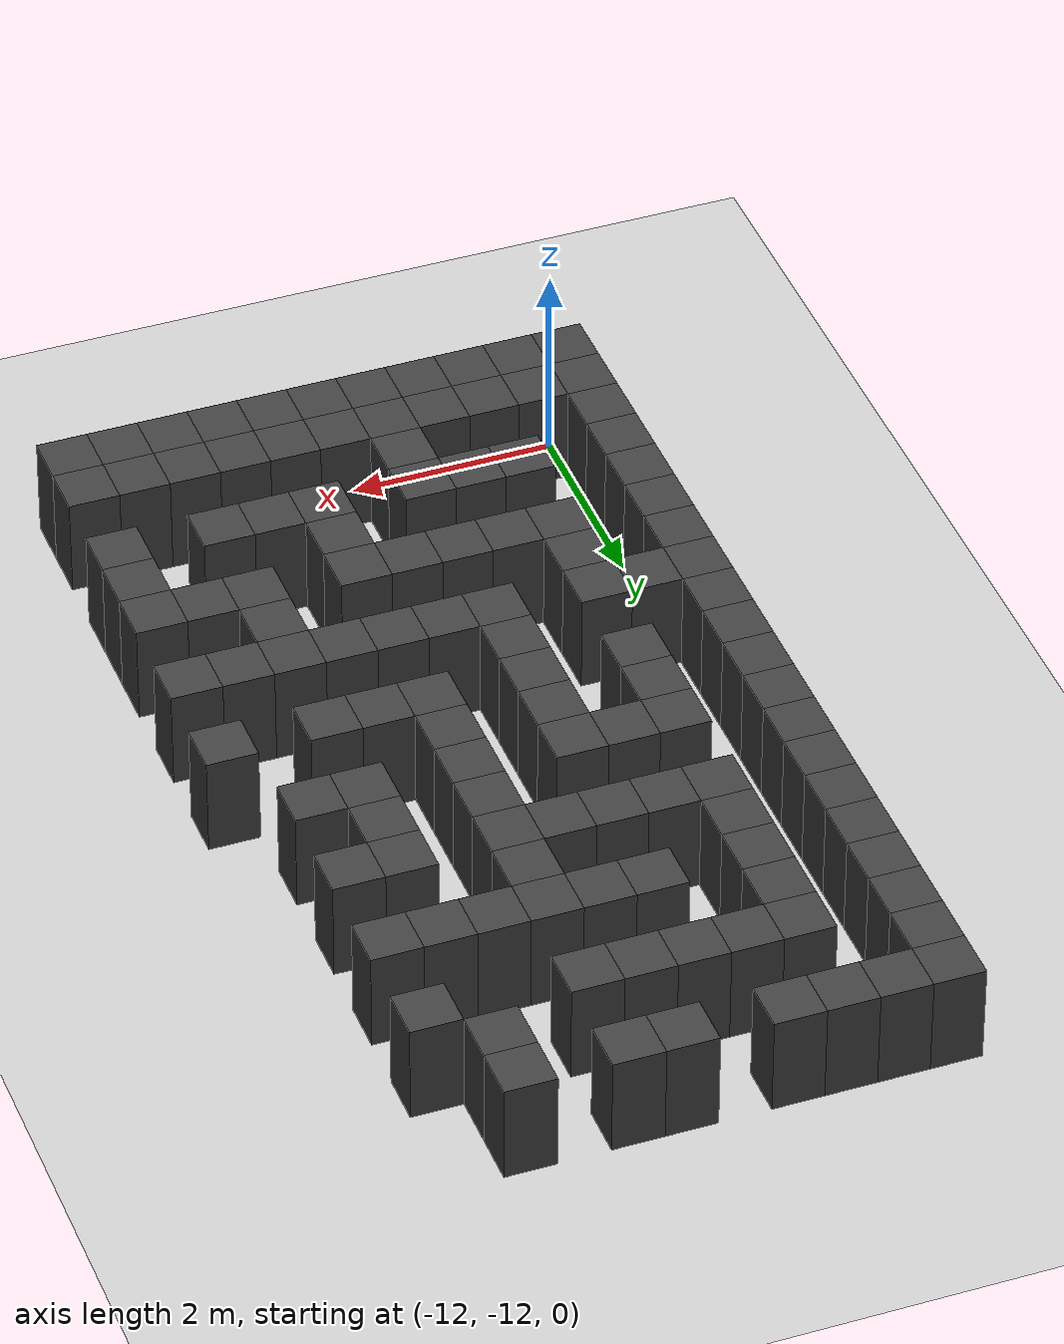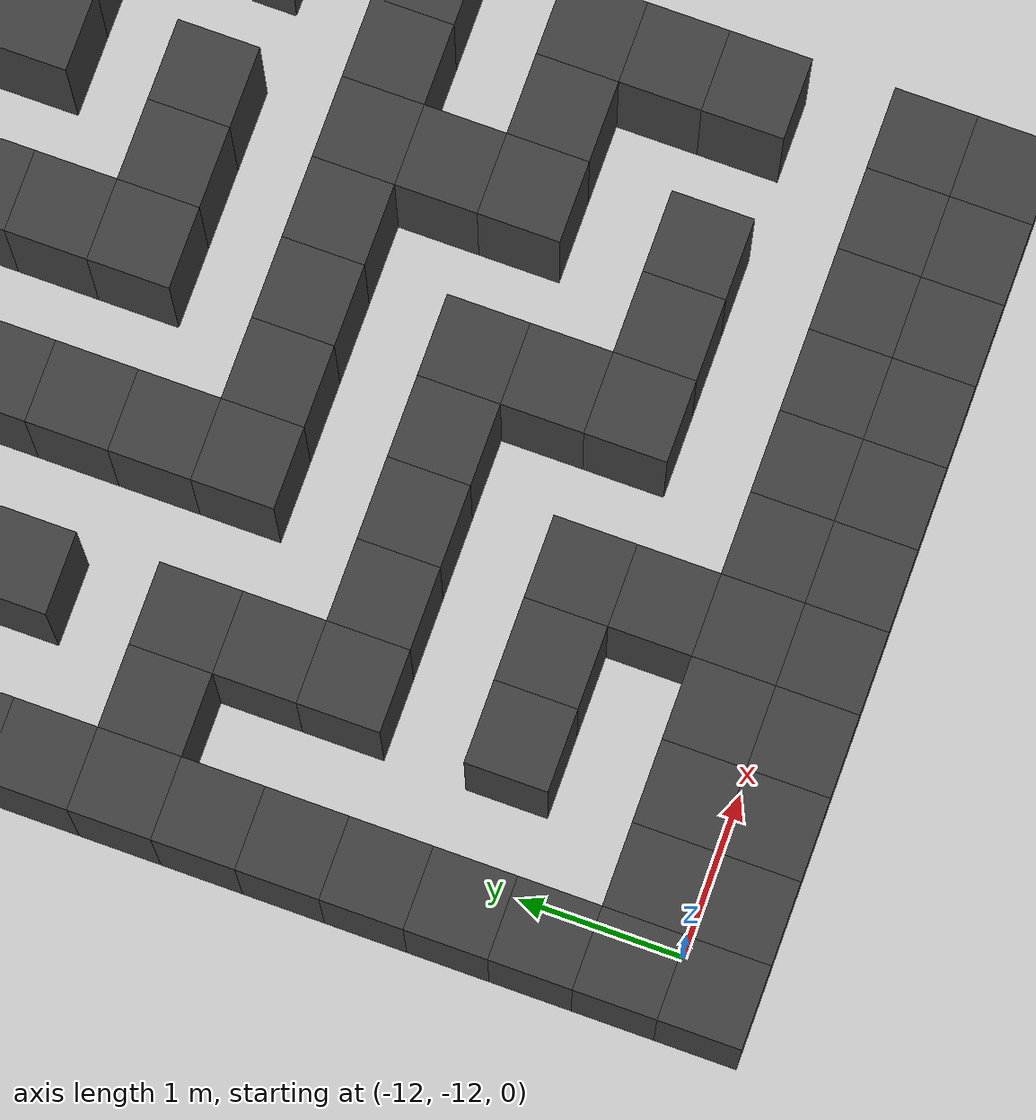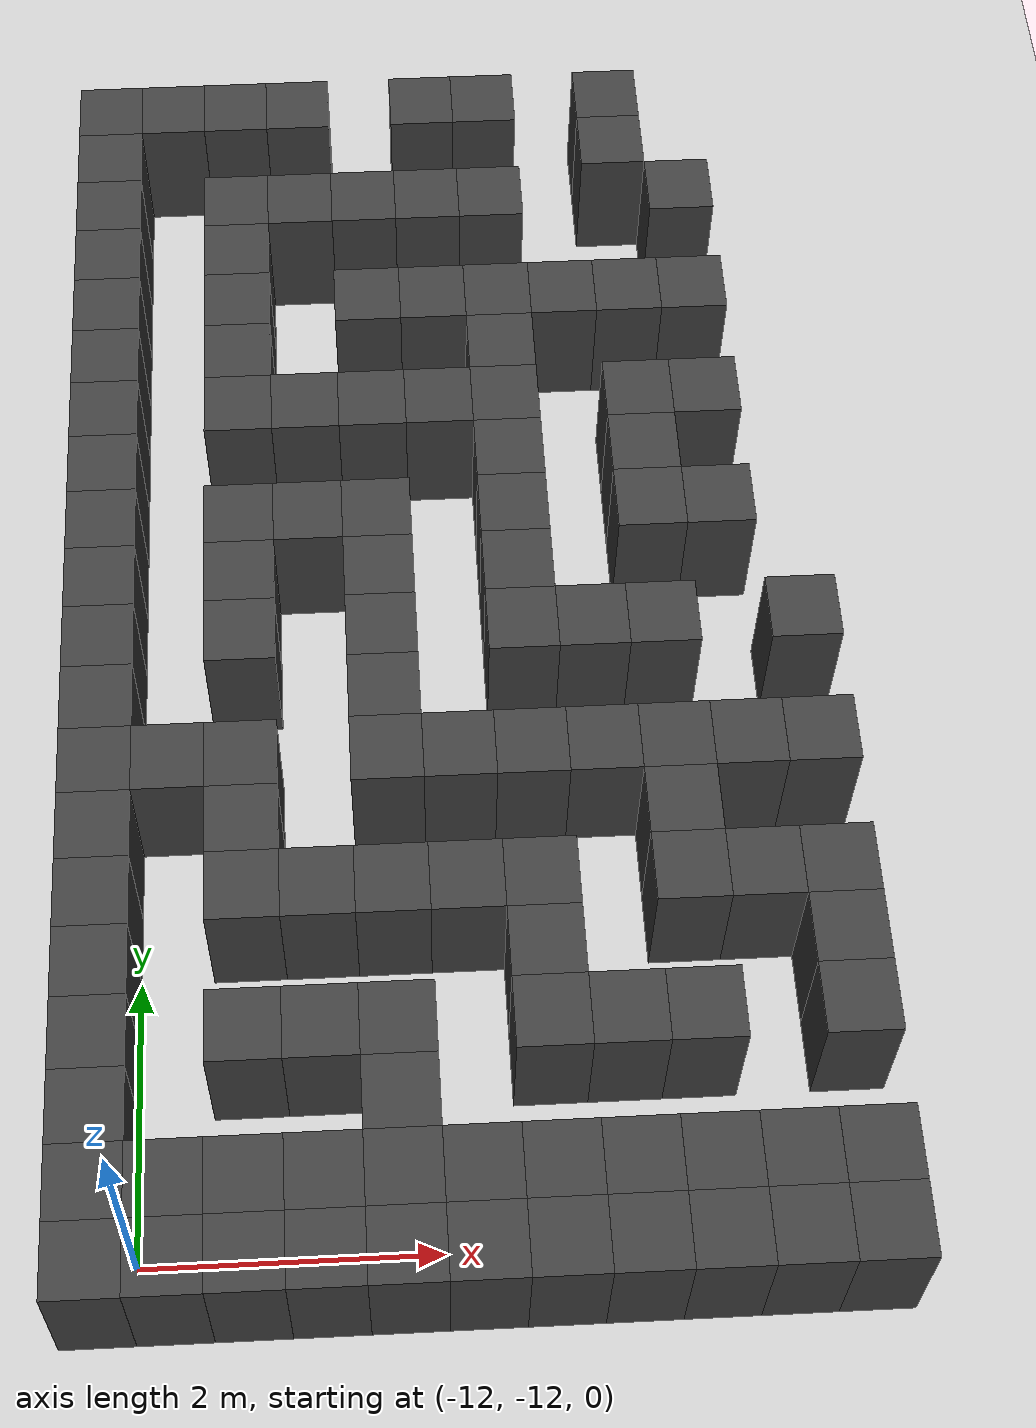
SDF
<sdf version="1.7">
 <world name="map_18347">
  <model name="ground_plane">
   <static>true</static>
   <link name="link">
    <collision name="collision">
     <geometry><plane><normal>0 0 1</normal><size>200 200</size></plane></geometry>
    </collision>
    <visual name="visual">
     <geometry><plane><normal>0 0 1</normal><size>200 200</size></plane></geometry>
     <material><ambient>0.8 0.8 0.8 1</ambient><diffuse>0.8 0.8 0.8 1</diffuse></material>
    </visual>
   </link>
  </model>
  <model name="maze_environment">
   <static>true</static>
   <link name="wall_755">
    <pose>-12.250 -2.750 0.500 0 0 0</pose>
    <collision name="col"><geometry><box><size>0.5 0.5 1.0</size></box></geometry></collision>
    <visual name="vis">
     <geometry><box><size>0.5 0.5 1.0</size></box></geometry>
     <material><ambient>0.15 0.15 0.15 1</ambient><diffuse>0.25 0.25 0.25 1</diffuse></material>
    </visual>
   </link>
   <link name="wall_756">
    <pose>-11.750 -2.750 0.500 0 0 0</pose>
    <collision name="col"><geometry><box><size>0.5 0.5 1.0</size></box></geometry></collision>
    <visual name="vis">
     <geometry><box><size>0.5 0.5 1.0</size></box></geometry>
     <material><ambient>0.15 0.15 0.15 1</ambient><diffuse>0.25 0.25 0.25 1</diffuse></material>
    </visual>
   </link>
   <link name="wall_757">
    <pose>-11.250 -2.750 0.500 0 0 0</pose>
    <collision name="col"><geometry><box><size>0.5 0.5 1.0</size></box></geometry></collision>
    <visual name="vis">
     <geometry><box><size>0.5 0.5 1.0</size></box></geometry>
     <material><ambient>0.15 0.15 0.15 1</ambient><diffuse>0.25 0.25 0.25 1</diffuse></material>
    </visual>
   </link>
   <link name="wall_758">
    <pose>-10.750 -2.750 0.500 0 0 0</pose>
    <collision name="col"><geometry><box><size>0.5 0.5 1.0</size></box></geometry></collision>
    <visual name="vis">
     <geometry><box><size>0.5 0.5 1.0</size></box></geometry>
     <material><ambient>0.15 0.15 0.15 1</ambient><diffuse>0.25 0.25 0.25 1</diffuse></material>
    </visual>
   </link>
   <link name="wall_759">
    <pose>-9.750 -2.750 0.500 0 0 0</pose>
    <collision name="col"><geometry><box><size>0.5 0.5 1.0</size></box></geometry></collision>
    <visual name="vis">
     <geometry><box><size>0.5 0.5 1.0</size></box></geometry>
     <material><ambient>0.15 0.15 0.15 1</ambient><diffuse>0.25 0.25 0.25 1</diffuse></material>
    </visual>
   </link>
   <link name="wall_760">
    <pose>-9.250 -2.750 0.500 0 0 0</pose>
    <collision name="col"><geometry><box><size>0.5 0.5 1.0</size></box></geometry></collision>
    <visual name="vis">
     <geometry><box><size>0.5 0.5 1.0</size></box></geometry>
     <material><ambient>0.15 0.15 0.15 1</ambient><diffuse>0.25 0.25 0.25 1</diffuse></material>
    </visual>
   </link>
   <link name="wall_761">
    <pose>-8.250 -2.750 0.500 0 0 0</pose>
    <collision name="col"><geometry><box><size>0.5 0.5 1.0</size></box></geometry></collision>
    <visual name="vis">
     <geometry><box><size>0.5 0.5 1.0</size></box></geometry>
     <material><ambient>0.15 0.15 0.15 1</ambient><diffuse>0.25 0.25 0.25 1</diffuse></material>
    </visual>
   </link>
   <link name="wall_790">
    <pose>-12.250 -3.250 0.500 0 0 0</pose>
    <collision name="col"><geometry><box><size>0.5 0.5 1.0</size></box></geometry></collision>
    <visual name="vis">
     <geometry><box><size>0.5 0.5 1.0</size></box></geometry>
     <material><ambient>0.15 0.15 0.15 1</ambient><diffuse>0.25 0.25 0.25 1</diffuse></material>
    </visual>
   </link>
   <link name="wall_791">
    <pose>-8.250 -3.250 0.500 0 0 0</pose>
    <collision name="col"><geometry><box><size>0.5 0.5 1.0</size></box></geometry></collision>
    <visual name="vis">
     <geometry><box><size>0.5 0.5 1.0</size></box></geometry>
     <material><ambient>0.15 0.15 0.15 1</ambient><diffuse>0.25 0.25 0.25 1</diffuse></material>
    </visual>
   </link>
   <link name="wall_803">
    <pose>-12.250 -3.750 0.500 0 0 0</pose>
    <collision name="col"><geometry><box><size>0.5 0.5 1.0</size></box></geometry></collision>
    <visual name="vis">
     <geometry><box><size>0.5 0.5 1.0</size></box></geometry>
     <material><ambient>0.15 0.15 0.15 1</ambient><diffuse>0.25 0.25 0.25 1</diffuse></material>
    </visual>
   </link>
   <link name="wall_804">
    <pose>-11.250 -3.750 0.500 0 0 0</pose>
    <collision name="col"><geometry><box><size>0.5 0.5 1.0</size></box></geometry></collision>
    <visual name="vis">
     <geometry><box><size>0.5 0.5 1.0</size></box></geometry>
     <material><ambient>0.15 0.15 0.15 1</ambient><diffuse>0.25 0.25 0.25 1</diffuse></material>
    </visual>
   </link>
   <link name="wall_805">
    <pose>-10.750 -3.750 0.500 0 0 0</pose>
    <collision name="col"><geometry><box><size>0.5 0.5 1.0</size></box></geometry></collision>
    <visual name="vis">
     <geometry><box><size>0.5 0.5 1.0</size></box></geometry>
     <material><ambient>0.15 0.15 0.15 1</ambient><diffuse>0.25 0.25 0.25 1</diffuse></material>
    </visual>
   </link>
   <link name="wall_806">
    <pose>-10.250 -3.750 0.500 0 0 0</pose>
    <collision name="col"><geometry><box><size>0.5 0.5 1.0</size></box></geometry></collision>
    <visual name="vis">
     <geometry><box><size>0.5 0.5 1.0</size></box></geometry>
     <material><ambient>0.15 0.15 0.15 1</ambient><diffuse>0.25 0.25 0.25 1</diffuse></material>
    </visual>
   </link>
   <link name="wall_807">
    <pose>-9.750 -3.750 0.500 0 0 0</pose>
    <collision name="col"><geometry><box><size>0.5 0.5 1.0</size></box></geometry></collision>
    <visual name="vis">
     <geometry><box><size>0.5 0.5 1.0</size></box></geometry>
     <material><ambient>0.15 0.15 0.15 1</ambient><diffuse>0.25 0.25 0.25 1</diffuse></material>
    </visual>
   </link>
   <link name="wall_808">
    <pose>-9.250 -3.750 0.500 0 0 0</pose>
    <collision name="col"><geometry><box><size>0.5 0.5 1.0</size></box></geometry></collision>
    <visual name="vis">
     <geometry><box><size>0.5 0.5 1.0</size></box></geometry>
     <material><ambient>0.15 0.15 0.15 1</ambient><diffuse>0.25 0.25 0.25 1</diffuse></material>
    </visual>
   </link>
   <link name="wall_809">
    <pose>-7.750 -3.750 0.500 0 0 0</pose>
    <collision name="col"><geometry><box><size>0.5 0.5 1.0</size></box></geometry></collision>
    <visual name="vis">
     <geometry><box><size>0.5 0.5 1.0</size></box></geometry>
     <material><ambient>0.15 0.15 0.15 1</ambient><diffuse>0.25 0.25 0.25 1</diffuse></material>
    </visual>
   </link>
   <link name="wall_841">
    <pose>-12.250 -4.250 0.500 0 0 0</pose>
    <collision name="col"><geometry><box><size>0.5 0.5 1.0</size></box></geometry></collision>
    <visual name="vis">
     <geometry><box><size>0.5 0.5 1.0</size></box></geometry>
     <material><ambient>0.15 0.15 0.15 1</ambient><diffuse>0.25 0.25 0.25 1</diffuse></material>
    </visual>
   </link>
   <link name="wall_842">
    <pose>-11.250 -4.250 0.500 0 0 0</pose>
    <collision name="col"><geometry><box><size>0.5 0.5 1.0</size></box></geometry></collision>
    <visual name="vis">
     <geometry><box><size>0.5 0.5 1.0</size></box></geometry>
     <material><ambient>0.15 0.15 0.15 1</ambient><diffuse>0.25 0.25 0.25 1</diffuse></material>
    </visual>
   </link>
   <link name="wall_853">
    <pose>-12.250 -4.750 0.500 0 0 0</pose>
    <collision name="col"><geometry><box><size>0.5 0.5 1.0</size></box></geometry></collision>
    <visual name="vis">
     <geometry><box><size>0.5 0.5 1.0</size></box></geometry>
     <material><ambient>0.15 0.15 0.15 1</ambient><diffuse>0.25 0.25 0.25 1</diffuse></material>
    </visual>
   </link>
   <link name="wall_854">
    <pose>-11.250 -4.750 0.500 0 0 0</pose>
    <collision name="col"><geometry><box><size>0.5 0.5 1.0</size></box></geometry></collision>
    <visual name="vis">
     <geometry><box><size>0.5 0.5 1.0</size></box></geometry>
     <material><ambient>0.15 0.15 0.15 1</ambient><diffuse>0.25 0.25 0.25 1</diffuse></material>
    </visual>
   </link>
   <link name="wall_855">
    <pose>-10.250 -4.750 0.500 0 0 0</pose>
    <collision name="col"><geometry><box><size>0.5 0.5 1.0</size></box></geometry></collision>
    <visual name="vis">
     <geometry><box><size>0.5 0.5 1.0</size></box></geometry>
     <material><ambient>0.15 0.15 0.15 1</ambient><diffuse>0.25 0.25 0.25 1</diffuse></material>
    </visual>
   </link>
   <link name="wall_856">
    <pose>-9.750 -4.750 0.500 0 0 0</pose>
    <collision name="col"><geometry><box><size>0.5 0.5 1.0</size></box></geometry></collision>
    <visual name="vis">
     <geometry><box><size>0.5 0.5 1.0</size></box></geometry>
     <material><ambient>0.15 0.15 0.15 1</ambient><diffuse>0.25 0.25 0.25 1</diffuse></material>
    </visual>
   </link>
   <link name="wall_857">
    <pose>-9.250 -4.750 0.500 0 0 0</pose>
    <collision name="col"><geometry><box><size>0.5 0.5 1.0</size></box></geometry></collision>
    <visual name="vis">
     <geometry><box><size>0.5 0.5 1.0</size></box></geometry>
     <material><ambient>0.15 0.15 0.15 1</ambient><diffuse>0.25 0.25 0.25 1</diffuse></material>
    </visual>
   </link>
   <link name="wall_858">
    <pose>-8.750 -4.750 0.500 0 0 0</pose>
    <collision name="col"><geometry><box><size>0.5 0.5 1.0</size></box></geometry></collision>
    <visual name="vis">
     <geometry><box><size>0.5 0.5 1.0</size></box></geometry>
     <material><ambient>0.15 0.15 0.15 1</ambient><diffuse>0.25 0.25 0.25 1</diffuse></material>
    </visual>
   </link>
   <link name="wall_859">
    <pose>-8.250 -4.750 0.500 0 0 0</pose>
    <collision name="col"><geometry><box><size>0.5 0.5 1.0</size></box></geometry></collision>
    <visual name="vis">
     <geometry><box><size>0.5 0.5 1.0</size></box></geometry>
     <material><ambient>0.15 0.15 0.15 1</ambient><diffuse>0.25 0.25 0.25 1</diffuse></material>
    </visual>
   </link>
   <link name="wall_860">
    <pose>-7.750 -4.750 0.500 0 0 0</pose>
    <collision name="col"><geometry><box><size>0.5 0.5 1.0</size></box></geometry></collision>
    <visual name="vis">
     <geometry><box><size>0.5 0.5 1.0</size></box></geometry>
     <material><ambient>0.15 0.15 0.15 1</ambient><diffuse>0.25 0.25 0.25 1</diffuse></material>
    </visual>
   </link>
   <link name="wall_891">
    <pose>-12.250 -5.250 0.500 0 0 0</pose>
    <collision name="col"><geometry><box><size>0.5 0.5 1.0</size></box></geometry></collision>
    <visual name="vis">
     <geometry><box><size>0.5 0.5 1.0</size></box></geometry>
     <material><ambient>0.15 0.15 0.15 1</ambient><diffuse>0.25 0.25 0.25 1</diffuse></material>
    </visual>
   </link>
   <link name="wall_892">
    <pose>-11.250 -5.250 0.500 0 0 0</pose>
    <collision name="col"><geometry><box><size>0.5 0.5 1.0</size></box></geometry></collision>
    <visual name="vis">
     <geometry><box><size>0.5 0.5 1.0</size></box></geometry>
     <material><ambient>0.15 0.15 0.15 1</ambient><diffuse>0.25 0.25 0.25 1</diffuse></material>
    </visual>
   </link>
   <link name="wall_893">
    <pose>-9.250 -5.250 0.500 0 0 0</pose>
    <collision name="col"><geometry><box><size>0.5 0.5 1.0</size></box></geometry></collision>
    <visual name="vis">
     <geometry><box><size>0.5 0.5 1.0</size></box></geometry>
     <material><ambient>0.15 0.15 0.15 1</ambient><diffuse>0.25 0.25 0.25 1</diffuse></material>
    </visual>
   </link>
   <link name="wall_904">
    <pose>-12.250 -5.750 0.500 0 0 0</pose>
    <collision name="col"><geometry><box><size>0.5 0.5 1.0</size></box></geometry></collision>
    <visual name="vis">
     <geometry><box><size>0.5 0.5 1.0</size></box></geometry>
     <material><ambient>0.15 0.15 0.15 1</ambient><diffuse>0.25 0.25 0.25 1</diffuse></material>
    </visual>
   </link>
   <link name="wall_905">
    <pose>-11.250 -5.750 0.500 0 0 0</pose>
    <collision name="col"><geometry><box><size>0.5 0.5 1.0</size></box></geometry></collision>
    <visual name="vis">
     <geometry><box><size>0.5 0.5 1.0</size></box></geometry>
     <material><ambient>0.15 0.15 0.15 1</ambient><diffuse>0.25 0.25 0.25 1</diffuse></material>
    </visual>
   </link>
   <link name="wall_906">
    <pose>-10.750 -5.750 0.500 0 0 0</pose>
    <collision name="col"><geometry><box><size>0.5 0.5 1.0</size></box></geometry></collision>
    <visual name="vis">
     <geometry><box><size>0.5 0.5 1.0</size></box></geometry>
     <material><ambient>0.15 0.15 0.15 1</ambient><diffuse>0.25 0.25 0.25 1</diffuse></material>
    </visual>
   </link>
   <link name="wall_907">
    <pose>-10.250 -5.750 0.500 0 0 0</pose>
    <collision name="col"><geometry><box><size>0.5 0.5 1.0</size></box></geometry></collision>
    <visual name="vis">
     <geometry><box><size>0.5 0.5 1.0</size></box></geometry>
     <material><ambient>0.15 0.15 0.15 1</ambient><diffuse>0.25 0.25 0.25 1</diffuse></material>
    </visual>
   </link>
   <link name="wall_908">
    <pose>-9.750 -5.750 0.500 0 0 0</pose>
    <collision name="col"><geometry><box><size>0.5 0.5 1.0</size></box></geometry></collision>
    <visual name="vis">
     <geometry><box><size>0.5 0.5 1.0</size></box></geometry>
     <material><ambient>0.15 0.15 0.15 1</ambient><diffuse>0.25 0.25 0.25 1</diffuse></material>
    </visual>
   </link>
   <link name="wall_909">
    <pose>-9.250 -5.750 0.500 0 0 0</pose>
    <collision name="col"><geometry><box><size>0.5 0.5 1.0</size></box></geometry></collision>
    <visual name="vis">
     <geometry><box><size>0.5 0.5 1.0</size></box></geometry>
     <material><ambient>0.15 0.15 0.15 1</ambient><diffuse>0.25 0.25 0.25 1</diffuse></material>
    </visual>
   </link>
   <link name="wall_910">
    <pose>-8.250 -5.750 0.500 0 0 0</pose>
    <collision name="col"><geometry><box><size>0.5 0.5 1.0</size></box></geometry></collision>
    <visual name="vis">
     <geometry><box><size>0.5 0.5 1.0</size></box></geometry>
     <material><ambient>0.15 0.15 0.15 1</ambient><diffuse>0.25 0.25 0.25 1</diffuse></material>
    </visual>
   </link>
   <link name="wall_911">
    <pose>-7.750 -5.750 0.500 0 0 0</pose>
    <collision name="col"><geometry><box><size>0.5 0.5 1.0</size></box></geometry></collision>
    <visual name="vis">
     <geometry><box><size>0.5 0.5 1.0</size></box></geometry>
     <material><ambient>0.15 0.15 0.15 1</ambient><diffuse>0.25 0.25 0.25 1</diffuse></material>
    </visual>
   </link>
   <link name="wall_937">
    <pose>-12.250 -6.250 0.500 0 0 0</pose>
    <collision name="col"><geometry><box><size>0.5 0.5 1.0</size></box></geometry></collision>
    <visual name="vis">
     <geometry><box><size>0.5 0.5 1.0</size></box></geometry>
     <material><ambient>0.15 0.15 0.15 1</ambient><diffuse>0.25 0.25 0.25 1</diffuse></material>
    </visual>
   </link>
   <link name="wall_938">
    <pose>-9.250 -6.250 0.500 0 0 0</pose>
    <collision name="col"><geometry><box><size>0.5 0.5 1.0</size></box></geometry></collision>
    <visual name="vis">
     <geometry><box><size>0.5 0.5 1.0</size></box></geometry>
     <material><ambient>0.15 0.15 0.15 1</ambient><diffuse>0.25 0.25 0.25 1</diffuse></material>
    </visual>
   </link>
   <link name="wall_939">
    <pose>-8.250 -6.250 0.500 0 0 0</pose>
    <collision name="col"><geometry><box><size>0.5 0.5 1.0</size></box></geometry></collision>
    <visual name="vis">
     <geometry><box><size>0.5 0.5 1.0</size></box></geometry>
     <material><ambient>0.15 0.15 0.15 1</ambient><diffuse>0.25 0.25 0.25 1</diffuse></material>
    </visual>
   </link>
   <link name="wall_950">
    <pose>-12.250 -6.750 0.500 0 0 0</pose>
    <collision name="col"><geometry><box><size>0.5 0.5 1.0</size></box></geometry></collision>
    <visual name="vis">
     <geometry><box><size>0.5 0.5 1.0</size></box></geometry>
     <material><ambient>0.15 0.15 0.15 1</ambient><diffuse>0.25 0.25 0.25 1</diffuse></material>
    </visual>
   </link>
   <link name="wall_951">
    <pose>-11.250 -6.750 0.500 0 0 0</pose>
    <collision name="col"><geometry><box><size>0.5 0.5 1.0</size></box></geometry></collision>
    <visual name="vis">
     <geometry><box><size>0.5 0.5 1.0</size></box></geometry>
     <material><ambient>0.15 0.15 0.15 1</ambient><diffuse>0.25 0.25 0.25 1</diffuse></material>
    </visual>
   </link>
   <link name="wall_952">
    <pose>-10.750 -6.750 0.500 0 0 0</pose>
    <collision name="col"><geometry><box><size>0.5 0.5 1.0</size></box></geometry></collision>
    <visual name="vis">
     <geometry><box><size>0.5 0.5 1.0</size></box></geometry>
     <material><ambient>0.15 0.15 0.15 1</ambient><diffuse>0.25 0.25 0.25 1</diffuse></material>
    </visual>
   </link>
   <link name="wall_953">
    <pose>-10.250 -6.750 0.500 0 0 0</pose>
    <collision name="col"><geometry><box><size>0.5 0.5 1.0</size></box></geometry></collision>
    <visual name="vis">
     <geometry><box><size>0.5 0.5 1.0</size></box></geometry>
     <material><ambient>0.15 0.15 0.15 1</ambient><diffuse>0.25 0.25 0.25 1</diffuse></material>
    </visual>
   </link>
   <link name="wall_954">
    <pose>-9.250 -6.750 0.500 0 0 0</pose>
    <collision name="col"><geometry><box><size>0.5 0.5 1.0</size></box></geometry></collision>
    <visual name="vis">
     <geometry><box><size>0.5 0.5 1.0</size></box></geometry>
     <material><ambient>0.15 0.15 0.15 1</ambient><diffuse>0.25 0.25 0.25 1</diffuse></material>
    </visual>
   </link>
   <link name="wall_955">
    <pose>-8.250 -6.750 0.500 0 0 0</pose>
    <collision name="col"><geometry><box><size>0.5 0.5 1.0</size></box></geometry></collision>
    <visual name="vis">
     <geometry><box><size>0.5 0.5 1.0</size></box></geometry>
     <material><ambient>0.15 0.15 0.15 1</ambient><diffuse>0.25 0.25 0.25 1</diffuse></material>
    </visual>
   </link>
   <link name="wall_956">
    <pose>-7.750 -6.750 0.500 0 0 0</pose>
    <collision name="col"><geometry><box><size>0.5 0.5 1.0</size></box></geometry></collision>
    <visual name="vis">
     <geometry><box><size>0.5 0.5 1.0</size></box></geometry>
     <material><ambient>0.15 0.15 0.15 1</ambient><diffuse>0.25 0.25 0.25 1</diffuse></material>
    </visual>
   </link>
   <link name="wall_986">
    <pose>-12.250 -7.250 0.500 0 0 0</pose>
    <collision name="col"><geometry><box><size>0.5 0.5 1.0</size></box></geometry></collision>
    <visual name="vis">
     <geometry><box><size>0.5 0.5 1.0</size></box></geometry>
     <material><ambient>0.15 0.15 0.15 1</ambient><diffuse>0.25 0.25 0.25 1</diffuse></material>
    </visual>
   </link>
   <link name="wall_987">
    <pose>-11.250 -7.250 0.500 0 0 0</pose>
    <collision name="col"><geometry><box><size>0.5 0.5 1.0</size></box></geometry></collision>
    <visual name="vis">
     <geometry><box><size>0.5 0.5 1.0</size></box></geometry>
     <material><ambient>0.15 0.15 0.15 1</ambient><diffuse>0.25 0.25 0.25 1</diffuse></material>
    </visual>
   </link>
   <link name="wall_988">
    <pose>-10.250 -7.250 0.500 0 0 0</pose>
    <collision name="col"><geometry><box><size>0.5 0.5 1.0</size></box></geometry></collision>
    <visual name="vis">
     <geometry><box><size>0.5 0.5 1.0</size></box></geometry>
     <material><ambient>0.15 0.15 0.15 1</ambient><diffuse>0.25 0.25 0.25 1</diffuse></material>
    </visual>
   </link>
   <link name="wall_989">
    <pose>-9.250 -7.250 0.500 0 0 0</pose>
    <collision name="col"><geometry><box><size>0.5 0.5 1.0</size></box></geometry></collision>
    <visual name="vis">
     <geometry><box><size>0.5 0.5 1.0</size></box></geometry>
     <material><ambient>0.15 0.15 0.15 1</ambient><diffuse>0.25 0.25 0.25 1</diffuse></material>
    </visual>
   </link>
   <link name="wall_1001">
    <pose>-12.250 -7.750 0.500 0 0 0</pose>
    <collision name="col"><geometry><box><size>0.5 0.5 1.0</size></box></geometry></collision>
    <visual name="vis">
     <geometry><box><size>0.5 0.5 1.0</size></box></geometry>
     <material><ambient>0.15 0.15 0.15 1</ambient><diffuse>0.25 0.25 0.25 1</diffuse></material>
    </visual>
   </link>
   <link name="wall_1002">
    <pose>-11.250 -7.750 0.500 0 0 0</pose>
    <collision name="col"><geometry><box><size>0.5 0.5 1.0</size></box></geometry></collision>
    <visual name="vis">
     <geometry><box><size>0.5 0.5 1.0</size></box></geometry>
     <material><ambient>0.15 0.15 0.15 1</ambient><diffuse>0.25 0.25 0.25 1</diffuse></material>
    </visual>
   </link>
   <link name="wall_1003">
    <pose>-10.250 -7.750 0.500 0 0 0</pose>
    <collision name="col"><geometry><box><size>0.5 0.5 1.0</size></box></geometry></collision>
    <visual name="vis">
     <geometry><box><size>0.5 0.5 1.0</size></box></geometry>
     <material><ambient>0.15 0.15 0.15 1</ambient><diffuse>0.25 0.25 0.25 1</diffuse></material>
    </visual>
   </link>
   <link name="wall_1004">
    <pose>-9.250 -7.750 0.500 0 0 0</pose>
    <collision name="col"><geometry><box><size>0.5 0.5 1.0</size></box></geometry></collision>
    <visual name="vis">
     <geometry><box><size>0.5 0.5 1.0</size></box></geometry>
     <material><ambient>0.15 0.15 0.15 1</ambient><diffuse>0.25 0.25 0.25 1</diffuse></material>
    </visual>
   </link>
   <link name="wall_1005">
    <pose>-8.750 -7.750 0.500 0 0 0</pose>
    <collision name="col"><geometry><box><size>0.5 0.5 1.0</size></box></geometry></collision>
    <visual name="vis">
     <geometry><box><size>0.5 0.5 1.0</size></box></geometry>
     <material><ambient>0.15 0.15 0.15 1</ambient><diffuse>0.25 0.25 0.25 1</diffuse></material>
    </visual>
   </link>
   <link name="wall_1006">
    <pose>-8.250 -7.750 0.500 0 0 0</pose>
    <collision name="col"><geometry><box><size>0.5 0.5 1.0</size></box></geometry></collision>
    <visual name="vis">
     <geometry><box><size>0.5 0.5 1.0</size></box></geometry>
     <material><ambient>0.15 0.15 0.15 1</ambient><diffuse>0.25 0.25 0.25 1</diffuse></material>
    </visual>
   </link>
   <link name="wall_1007">
    <pose>-7.250 -7.750 0.500 0 0 0</pose>
    <collision name="col"><geometry><box><size>0.5 0.5 1.0</size></box></geometry></collision>
    <visual name="vis">
     <geometry><box><size>0.5 0.5 1.0</size></box></geometry>
     <material><ambient>0.15 0.15 0.15 1</ambient><diffuse>0.25 0.25 0.25 1</diffuse></material>
    </visual>
   </link>
   <link name="wall_1038">
    <pose>-12.250 -8.250 0.500 0 0 0</pose>
    <collision name="col"><geometry><box><size>0.5 0.5 1.0</size></box></geometry></collision>
    <visual name="vis">
     <geometry><box><size>0.5 0.5 1.0</size></box></geometry>
     <material><ambient>0.15 0.15 0.15 1</ambient><diffuse>0.25 0.25 0.25 1</diffuse></material>
    </visual>
   </link>
   <link name="wall_1039">
    <pose>-10.250 -8.250 0.500 0 0 0</pose>
    <collision name="col"><geometry><box><size>0.5 0.5 1.0</size></box></geometry></collision>
    <visual name="vis">
     <geometry><box><size>0.5 0.5 1.0</size></box></geometry>
     <material><ambient>0.15 0.15 0.15 1</ambient><diffuse>0.25 0.25 0.25 1</diffuse></material>
    </visual>
   </link>
   <link name="wall_1053">
    <pose>-12.250 -8.750 0.500 0 0 0</pose>
    <collision name="col"><geometry><box><size>0.5 0.5 1.0</size></box></geometry></collision>
    <visual name="vis">
     <geometry><box><size>0.5 0.5 1.0</size></box></geometry>
     <material><ambient>0.15 0.15 0.15 1</ambient><diffuse>0.25 0.25 0.25 1</diffuse></material>
    </visual>
   </link>
   <link name="wall_1054">
    <pose>-11.750 -8.750 0.500 0 0 0</pose>
    <collision name="col"><geometry><box><size>0.5 0.5 1.0</size></box></geometry></collision>
    <visual name="vis">
     <geometry><box><size>0.5 0.5 1.0</size></box></geometry>
     <material><ambient>0.15 0.15 0.15 1</ambient><diffuse>0.25 0.25 0.25 1</diffuse></material>
    </visual>
   </link>
   <link name="wall_1055">
    <pose>-11.250 -8.750 0.500 0 0 0</pose>
    <collision name="col"><geometry><box><size>0.5 0.5 1.0</size></box></geometry></collision>
    <visual name="vis">
     <geometry><box><size>0.5 0.5 1.0</size></box></geometry>
     <material><ambient>0.15 0.15 0.15 1</ambient><diffuse>0.25 0.25 0.25 1</diffuse></material>
    </visual>
   </link>
   <link name="wall_1056">
    <pose>-10.250 -8.750 0.500 0 0 0</pose>
    <collision name="col"><geometry><box><size>0.5 0.5 1.0</size></box></geometry></collision>
    <visual name="vis">
     <geometry><box><size>0.5 0.5 1.0</size></box></geometry>
     <material><ambient>0.15 0.15 0.15 1</ambient><diffuse>0.25 0.25 0.25 1</diffuse></material>
    </visual>
   </link>
   <link name="wall_1057">
    <pose>-9.750 -8.750 0.500 0 0 0</pose>
    <collision name="col"><geometry><box><size>0.5 0.5 1.0</size></box></geometry></collision>
    <visual name="vis">
     <geometry><box><size>0.5 0.5 1.0</size></box></geometry>
     <material><ambient>0.15 0.15 0.15 1</ambient><diffuse>0.25 0.25 0.25 1</diffuse></material>
    </visual>
   </link>
   <link name="wall_1058">
    <pose>-9.250 -8.750 0.500 0 0 0</pose>
    <collision name="col"><geometry><box><size>0.5 0.5 1.0</size></box></geometry></collision>
    <visual name="vis">
     <geometry><box><size>0.5 0.5 1.0</size></box></geometry>
     <material><ambient>0.15 0.15 0.15 1</ambient><diffuse>0.25 0.25 0.25 1</diffuse></material>
    </visual>
   </link>
   <link name="wall_1059">
    <pose>-8.750 -8.750 0.500 0 0 0</pose>
    <collision name="col"><geometry><box><size>0.5 0.5 1.0</size></box></geometry></collision>
    <visual name="vis">
     <geometry><box><size>0.5 0.5 1.0</size></box></geometry>
     <material><ambient>0.15 0.15 0.15 1</ambient><diffuse>0.25 0.25 0.25 1</diffuse></material>
    </visual>
   </link>
   <link name="wall_1060">
    <pose>-8.250 -8.750 0.500 0 0 0</pose>
    <collision name="col"><geometry><box><size>0.5 0.5 1.0</size></box></geometry></collision>
    <visual name="vis">
     <geometry><box><size>0.5 0.5 1.0</size></box></geometry>
     <material><ambient>0.15 0.15 0.15 1</ambient><diffuse>0.25 0.25 0.25 1</diffuse></material>
    </visual>
   </link>
   <link name="wall_1061">
    <pose>-7.750 -8.750 0.500 0 0 0</pose>
    <collision name="col"><geometry><box><size>0.5 0.5 1.0</size></box></geometry></collision>
    <visual name="vis">
     <geometry><box><size>0.5 0.5 1.0</size></box></geometry>
     <material><ambient>0.15 0.15 0.15 1</ambient><diffuse>0.25 0.25 0.25 1</diffuse></material>
    </visual>
   </link>
   <link name="wall_1062">
    <pose>-7.250 -8.750 0.500 0 0 0</pose>
    <collision name="col"><geometry><box><size>0.5 0.5 1.0</size></box></geometry></collision>
    <visual name="vis">
     <geometry><box><size>0.5 0.5 1.0</size></box></geometry>
     <material><ambient>0.15 0.15 0.15 1</ambient><diffuse>0.25 0.25 0.25 1</diffuse></material>
    </visual>
   </link>
   <link name="wall_1085">
    <pose>-12.250 -9.250 0.500 0 0 0</pose>
    <collision name="col"><geometry><box><size>0.5 0.5 1.0</size></box></geometry></collision>
    <visual name="vis">
     <geometry><box><size>0.5 0.5 1.0</size></box></geometry>
     <material><ambient>0.15 0.15 0.15 1</ambient><diffuse>0.25 0.25 0.25 1</diffuse></material>
    </visual>
   </link>
   <link name="wall_1086">
    <pose>-11.250 -9.250 0.500 0 0 0</pose>
    <collision name="col"><geometry><box><size>0.5 0.5 1.0</size></box></geometry></collision>
    <visual name="vis">
     <geometry><box><size>0.5 0.5 1.0</size></box></geometry>
     <material><ambient>0.15 0.15 0.15 1</ambient><diffuse>0.25 0.25 0.25 1</diffuse></material>
    </visual>
   </link>
   <link name="wall_1087">
    <pose>-8.250 -9.250 0.500 0 0 0</pose>
    <collision name="col"><geometry><box><size>0.5 0.5 1.0</size></box></geometry></collision>
    <visual name="vis">
     <geometry><box><size>0.5 0.5 1.0</size></box></geometry>
     <material><ambient>0.15 0.15 0.15 1</ambient><diffuse>0.25 0.25 0.25 1</diffuse></material>
    </visual>
   </link>
   <link name="wall_1103">
    <pose>-12.250 -9.750 0.500 0 0 0</pose>
    <collision name="col"><geometry><box><size>0.5 0.5 1.0</size></box></geometry></collision>
    <visual name="vis">
     <geometry><box><size>0.5 0.5 1.0</size></box></geometry>
     <material><ambient>0.15 0.15 0.15 1</ambient><diffuse>0.25 0.25 0.25 1</diffuse></material>
    </visual>
   </link>
   <link name="wall_1104">
    <pose>-11.250 -9.750 0.500 0 0 0</pose>
    <collision name="col"><geometry><box><size>0.5 0.5 1.0</size></box></geometry></collision>
    <visual name="vis">
     <geometry><box><size>0.5 0.5 1.0</size></box></geometry>
     <material><ambient>0.15 0.15 0.15 1</ambient><diffuse>0.25 0.25 0.25 1</diffuse></material>
    </visual>
   </link>
   <link name="wall_1105">
    <pose>-10.750 -9.750 0.500 0 0 0</pose>
    <collision name="col"><geometry><box><size>0.5 0.5 1.0</size></box></geometry></collision>
    <visual name="vis">
     <geometry><box><size>0.5 0.5 1.0</size></box></geometry>
     <material><ambient>0.15 0.15 0.15 1</ambient><diffuse>0.25 0.25 0.25 1</diffuse></material>
    </visual>
   </link>
   <link name="wall_1106">
    <pose>-10.250 -9.750 0.500 0 0 0</pose>
    <collision name="col"><geometry><box><size>0.5 0.5 1.0</size></box></geometry></collision>
    <visual name="vis">
     <geometry><box><size>0.5 0.5 1.0</size></box></geometry>
     <material><ambient>0.15 0.15 0.15 1</ambient><diffuse>0.25 0.25 0.25 1</diffuse></material>
    </visual>
   </link>
   <link name="wall_1107">
    <pose>-9.750 -9.750 0.500 0 0 0</pose>
    <collision name="col"><geometry><box><size>0.5 0.5 1.0</size></box></geometry></collision>
    <visual name="vis">
     <geometry><box><size>0.5 0.5 1.0</size></box></geometry>
     <material><ambient>0.15 0.15 0.15 1</ambient><diffuse>0.25 0.25 0.25 1</diffuse></material>
    </visual>
   </link>
   <link name="wall_1108">
    <pose>-9.250 -9.750 0.500 0 0 0</pose>
    <collision name="col"><geometry><box><size>0.5 0.5 1.0</size></box></geometry></collision>
    <visual name="vis">
     <geometry><box><size>0.5 0.5 1.0</size></box></geometry>
     <material><ambient>0.15 0.15 0.15 1</ambient><diffuse>0.25 0.25 0.25 1</diffuse></material>
    </visual>
   </link>
   <link name="wall_1109">
    <pose>-8.250 -9.750 0.500 0 0 0</pose>
    <collision name="col"><geometry><box><size>0.5 0.5 1.0</size></box></geometry></collision>
    <visual name="vis">
     <geometry><box><size>0.5 0.5 1.0</size></box></geometry>
     <material><ambient>0.15 0.15 0.15 1</ambient><diffuse>0.25 0.25 0.25 1</diffuse></material>
    </visual>
   </link>
   <link name="wall_1110">
    <pose>-7.750 -9.750 0.500 0 0 0</pose>
    <collision name="col"><geometry><box><size>0.5 0.5 1.0</size></box></geometry></collision>
    <visual name="vis">
     <geometry><box><size>0.5 0.5 1.0</size></box></geometry>
     <material><ambient>0.15 0.15 0.15 1</ambient><diffuse>0.25 0.25 0.25 1</diffuse></material>
    </visual>
   </link>
   <link name="wall_1111">
    <pose>-7.250 -9.750 0.500 0 0 0</pose>
    <collision name="col"><geometry><box><size>0.5 0.5 1.0</size></box></geometry></collision>
    <visual name="vis">
     <geometry><box><size>0.5 0.5 1.0</size></box></geometry>
     <material><ambient>0.15 0.15 0.15 1</ambient><diffuse>0.25 0.25 0.25 1</diffuse></material>
    </visual>
   </link>
   <link name="wall_1140">
    <pose>-12.250 -10.250 0.500 0 0 0</pose>
    <collision name="col"><geometry><box><size>0.5 0.5 1.0</size></box></geometry></collision>
    <visual name="vis">
     <geometry><box><size>0.5 0.5 1.0</size></box></geometry>
     <material><ambient>0.15 0.15 0.15 1</ambient><diffuse>0.25 0.25 0.25 1</diffuse></material>
    </visual>
   </link>
   <link name="wall_1141">
    <pose>-9.250 -10.250 0.500 0 0 0</pose>
    <collision name="col"><geometry><box><size>0.5 0.5 1.0</size></box></geometry></collision>
    <visual name="vis">
     <geometry><box><size>0.5 0.5 1.0</size></box></geometry>
     <material><ambient>0.15 0.15 0.15 1</ambient><diffuse>0.25 0.25 0.25 1</diffuse></material>
    </visual>
   </link>
   <link name="wall_1142">
    <pose>-7.250 -10.250 0.500 0 0 0</pose>
    <collision name="col"><geometry><box><size>0.5 0.5 1.0</size></box></geometry></collision>
    <visual name="vis">
     <geometry><box><size>0.5 0.5 1.0</size></box></geometry>
     <material><ambient>0.15 0.15 0.15 1</ambient><diffuse>0.25 0.25 0.25 1</diffuse></material>
    </visual>
   </link>
   <link name="wall_1151">
    <pose>-12.250 -10.750 0.500 0 0 0</pose>
    <collision name="col"><geometry><box><size>0.5 0.5 1.0</size></box></geometry></collision>
    <visual name="vis">
     <geometry><box><size>0.5 0.5 1.0</size></box></geometry>
     <material><ambient>0.15 0.15 0.15 1</ambient><diffuse>0.25 0.25 0.25 1</diffuse></material>
    </visual>
   </link>
   <link name="wall_1152">
    <pose>-11.250 -10.750 0.500 0 0 0</pose>
    <collision name="col"><geometry><box><size>0.5 0.5 1.0</size></box></geometry></collision>
    <visual name="vis">
     <geometry><box><size>0.5 0.5 1.0</size></box></geometry>
     <material><ambient>0.15 0.15 0.15 1</ambient><diffuse>0.25 0.25 0.25 1</diffuse></material>
    </visual>
   </link>
   <link name="wall_1153">
    <pose>-10.750 -10.750 0.500 0 0 0</pose>
    <collision name="col"><geometry><box><size>0.5 0.5 1.0</size></box></geometry></collision>
    <visual name="vis">
     <geometry><box><size>0.5 0.5 1.0</size></box></geometry>
     <material><ambient>0.15 0.15 0.15 1</ambient><diffuse>0.25 0.25 0.25 1</diffuse></material>
    </visual>
   </link>
   <link name="wall_1154">
    <pose>-10.250 -10.750 0.500 0 0 0</pose>
    <collision name="col"><geometry><box><size>0.5 0.5 1.0</size></box></geometry></collision>
    <visual name="vis">
     <geometry><box><size>0.5 0.5 1.0</size></box></geometry>
     <material><ambient>0.15 0.15 0.15 1</ambient><diffuse>0.25 0.25 0.25 1</diffuse></material>
    </visual>
   </link>
   <link name="wall_1155">
    <pose>-9.250 -10.750 0.500 0 0 0</pose>
    <collision name="col"><geometry><box><size>0.5 0.5 1.0</size></box></geometry></collision>
    <visual name="vis">
     <geometry><box><size>0.5 0.5 1.0</size></box></geometry>
     <material><ambient>0.15 0.15 0.15 1</ambient><diffuse>0.25 0.25 0.25 1</diffuse></material>
    </visual>
   </link>
   <link name="wall_1156">
    <pose>-8.750 -10.750 0.500 0 0 0</pose>
    <collision name="col"><geometry><box><size>0.5 0.5 1.0</size></box></geometry></collision>
    <visual name="vis">
     <geometry><box><size>0.5 0.5 1.0</size></box></geometry>
     <material><ambient>0.15 0.15 0.15 1</ambient><diffuse>0.25 0.25 0.25 1</diffuse></material>
    </visual>
   </link>
   <link name="wall_1157">
    <pose>-8.250 -10.750 0.500 0 0 0</pose>
    <collision name="col"><geometry><box><size>0.5 0.5 1.0</size></box></geometry></collision>
    <visual name="vis">
     <geometry><box><size>0.5 0.5 1.0</size></box></geometry>
     <material><ambient>0.15 0.15 0.15 1</ambient><diffuse>0.25 0.25 0.25 1</diffuse></material>
    </visual>
   </link>
   <link name="wall_1158">
    <pose>-7.250 -10.750 0.500 0 0 0</pose>
    <collision name="col"><geometry><box><size>0.5 0.5 1.0</size></box></geometry></collision>
    <visual name="vis">
     <geometry><box><size>0.5 0.5 1.0</size></box></geometry>
     <material><ambient>0.15 0.15 0.15 1</ambient><diffuse>0.25 0.25 0.25 1</diffuse></material>
    </visual>
   </link>
   <link name="wall_1188">
    <pose>-12.250 -11.250 0.500 0 0 0</pose>
    <collision name="col"><geometry><box><size>0.5 0.5 1.0</size></box></geometry></collision>
    <visual name="vis">
     <geometry><box><size>0.5 0.5 1.0</size></box></geometry>
     <material><ambient>0.15 0.15 0.15 1</ambient><diffuse>0.25 0.25 0.25 1</diffuse></material>
    </visual>
   </link>
   <link name="wall_1189">
    <pose>-10.250 -11.250 0.500 0 0 0</pose>
    <collision name="col"><geometry><box><size>0.5 0.5 1.0</size></box></geometry></collision>
    <visual name="vis">
     <geometry><box><size>0.5 0.5 1.0</size></box></geometry>
     <material><ambient>0.15 0.15 0.15 1</ambient><diffuse>0.25 0.25 0.25 1</diffuse></material>
    </visual>
   </link>
   <link name="wall_1195">
    <pose>-12.250 -11.750 0.500 0 0 0</pose>
    <collision name="col"><geometry><box><size>0.5 0.5 1.0</size></box></geometry></collision>
    <visual name="vis">
     <geometry><box><size>0.5 0.5 1.0</size></box></geometry>
     <material><ambient>0.15 0.15 0.15 1</ambient><diffuse>0.25 0.25 0.25 1</diffuse></material>
    </visual>
   </link>
   <link name="wall_1196">
    <pose>-11.750 -11.750 0.500 0 0 0</pose>
    <collision name="col"><geometry><box><size>0.5 0.5 1.0</size></box></geometry></collision>
    <visual name="vis">
     <geometry><box><size>0.5 0.5 1.0</size></box></geometry>
     <material><ambient>0.15 0.15 0.15 1</ambient><diffuse>0.25 0.25 0.25 1</diffuse></material>
    </visual>
   </link>
   <link name="wall_1197">
    <pose>-11.250 -11.750 0.500 0 0 0</pose>
    <collision name="col"><geometry><box><size>0.5 0.5 1.0</size></box></geometry></collision>
    <visual name="vis">
     <geometry><box><size>0.5 0.5 1.0</size></box></geometry>
     <material><ambient>0.15 0.15 0.15 1</ambient><diffuse>0.25 0.25 0.25 1</diffuse></material>
    </visual>
   </link>
   <link name="wall_1198">
    <pose>-10.750 -11.750 0.500 0 0 0</pose>
    <collision name="col"><geometry><box><size>0.5 0.5 1.0</size></box></geometry></collision>
    <visual name="vis">
     <geometry><box><size>0.5 0.5 1.0</size></box></geometry>
     <material><ambient>0.15 0.15 0.15 1</ambient><diffuse>0.25 0.25 0.25 1</diffuse></material>
    </visual>
   </link>
   <link name="wall_1199">
    <pose>-10.250 -11.750 0.500 0 0 0</pose>
    <collision name="col"><geometry><box><size>0.5 0.5 1.0</size></box></geometry></collision>
    <visual name="vis">
     <geometry><box><size>0.5 0.5 1.0</size></box></geometry>
     <material><ambient>0.15 0.15 0.15 1</ambient><diffuse>0.25 0.25 0.25 1</diffuse></material>
    </visual>
   </link>
   <link name="wall_1200">
    <pose>-9.750 -11.750 0.500 0 0 0</pose>
    <collision name="col"><geometry><box><size>0.5 0.5 1.0</size></box></geometry></collision>
    <visual name="vis">
     <geometry><box><size>0.5 0.5 1.0</size></box></geometry>
     <material><ambient>0.15 0.15 0.15 1</ambient><diffuse>0.25 0.25 0.25 1</diffuse></material>
    </visual>
   </link>
   <link name="wall_1201">
    <pose>-9.250 -11.750 0.500 0 0 0</pose>
    <collision name="col"><geometry><box><size>0.5 0.5 1.0</size></box></geometry></collision>
    <visual name="vis">
     <geometry><box><size>0.5 0.5 1.0</size></box></geometry>
     <material><ambient>0.15 0.15 0.15 1</ambient><diffuse>0.25 0.25 0.25 1</diffuse></material>
    </visual>
   </link>
   <link name="wall_1202">
    <pose>-8.750 -11.750 0.500 0 0 0</pose>
    <collision name="col"><geometry><box><size>0.5 0.5 1.0</size></box></geometry></collision>
    <visual name="vis">
     <geometry><box><size>0.5 0.5 1.0</size></box></geometry>
     <material><ambient>0.15 0.15 0.15 1</ambient><diffuse>0.25 0.25 0.25 1</diffuse></material>
    </visual>
   </link>
   <link name="wall_1203">
    <pose>-8.250 -11.750 0.500 0 0 0</pose>
    <collision name="col"><geometry><box><size>0.5 0.5 1.0</size></box></geometry></collision>
    <visual name="vis">
     <geometry><box><size>0.5 0.5 1.0</size></box></geometry>
     <material><ambient>0.15 0.15 0.15 1</ambient><diffuse>0.25 0.25 0.25 1</diffuse></material>
    </visual>
   </link>
   <link name="wall_1204">
    <pose>-7.750 -11.750 0.500 0 0 0</pose>
    <collision name="col"><geometry><box><size>0.5 0.5 1.0</size></box></geometry></collision>
    <visual name="vis">
     <geometry><box><size>0.5 0.5 1.0</size></box></geometry>
     <material><ambient>0.15 0.15 0.15 1</ambient><diffuse>0.25 0.25 0.25 1</diffuse></material>
    </visual>
   </link>
   <link name="wall_1205">
    <pose>-7.250 -11.750 0.500 0 0 0</pose>
    <collision name="col"><geometry><box><size>0.5 0.5 1.0</size></box></geometry></collision>
    <visual name="vis">
     <geometry><box><size>0.5 0.5 1.0</size></box></geometry>
     <material><ambient>0.15 0.15 0.15 1</ambient><diffuse>0.25 0.25 0.25 1</diffuse></material>
    </visual>
   </link>
   <link name="wall_1243">
    <pose>-12.250 -12.250 0.500 0 0 0</pose>
    <collision name="col"><geometry><box><size>0.5 0.5 1.0</size></box></geometry></collision>
    <visual name="vis">
     <geometry><box><size>0.5 0.5 1.0</size></box></geometry>
     <material><ambient>0.15 0.15 0.15 1</ambient><diffuse>0.25 0.25 0.25 1</diffuse></material>
    </visual>
   </link>
   <link name="wall_1244">
    <pose>-11.750 -12.250 0.500 0 0 0</pose>
    <collision name="col"><geometry><box><size>0.5 0.5 1.0</size></box></geometry></collision>
    <visual name="vis">
     <geometry><box><size>0.5 0.5 1.0</size></box></geometry>
     <material><ambient>0.15 0.15 0.15 1</ambient><diffuse>0.25 0.25 0.25 1</diffuse></material>
    </visual>
   </link>
   <link name="wall_1245">
    <pose>-11.250 -12.250 0.500 0 0 0</pose>
    <collision name="col"><geometry><box><size>0.5 0.5 1.0</size></box></geometry></collision>
    <visual name="vis">
     <geometry><box><size>0.5 0.5 1.0</size></box></geometry>
     <material><ambient>0.15 0.15 0.15 1</ambient><diffuse>0.25 0.25 0.25 1</diffuse></material>
    </visual>
   </link>
   <link name="wall_1246">
    <pose>-10.750 -12.250 0.500 0 0 0</pose>
    <collision name="col"><geometry><box><size>0.5 0.5 1.0</size></box></geometry></collision>
    <visual name="vis">
     <geometry><box><size>0.5 0.5 1.0</size></box></geometry>
     <material><ambient>0.15 0.15 0.15 1</ambient><diffuse>0.25 0.25 0.25 1</diffuse></material>
    </visual>
   </link>
   <link name="wall_1247">
    <pose>-10.250 -12.250 0.500 0 0 0</pose>
    <collision name="col"><geometry><box><size>0.5 0.5 1.0</size></box></geometry></collision>
    <visual name="vis">
     <geometry><box><size>0.5 0.5 1.0</size></box></geometry>
     <material><ambient>0.15 0.15 0.15 1</ambient><diffuse>0.25 0.25 0.25 1</diffuse></material>
    </visual>
   </link>
   <link name="wall_1248">
    <pose>-9.750 -12.250 0.500 0 0 0</pose>
    <collision name="col"><geometry><box><size>0.5 0.5 1.0</size></box></geometry></collision>
    <visual name="vis">
     <geometry><box><size>0.5 0.5 1.0</size></box></geometry>
     <material><ambient>0.15 0.15 0.15 1</ambient><diffuse>0.25 0.25 0.25 1</diffuse></material>
    </visual>
   </link>
   <link name="wall_1249">
    <pose>-9.250 -12.250 0.500 0 0 0</pose>
    <collision name="col"><geometry><box><size>0.5 0.5 1.0</size></box></geometry></collision>
    <visual name="vis">
     <geometry><box><size>0.5 0.5 1.0</size></box></geometry>
     <material><ambient>0.15 0.15 0.15 1</ambient><diffuse>0.25 0.25 0.25 1</diffuse></material>
    </visual>
   </link>
   <link name="wall_1250">
    <pose>-8.750 -12.250 0.500 0 0 0</pose>
    <collision name="col"><geometry><box><size>0.5 0.5 1.0</size></box></geometry></collision>
    <visual name="vis">
     <geometry><box><size>0.5 0.5 1.0</size></box></geometry>
     <material><ambient>0.15 0.15 0.15 1</ambient><diffuse>0.25 0.25 0.25 1</diffuse></material>
    </visual>
   </link>
   <link name="wall_1251">
    <pose>-8.250 -12.250 0.500 0 0 0</pose>
    <collision name="col"><geometry><box><size>0.5 0.5 1.0</size></box></geometry></collision>
    <visual name="vis">
     <geometry><box><size>0.5 0.5 1.0</size></box></geometry>
     <material><ambient>0.15 0.15 0.15 1</ambient><diffuse>0.25 0.25 0.25 1</diffuse></material>
    </visual>
   </link>
   <link name="wall_1252">
    <pose>-7.750 -12.250 0.500 0 0 0</pose>
    <collision name="col"><geometry><box><size>0.5 0.5 1.0</size></box></geometry></collision>
    <visual name="vis">
     <geometry><box><size>0.5 0.5 1.0</size></box></geometry>
     <material><ambient>0.15 0.15 0.15 1</ambient><diffuse>0.25 0.25 0.25 1</diffuse></material>
    </visual>
   </link>
   <link name="wall_1253">
    <pose>-7.250 -12.250 0.500 0 0 0</pose>
    <collision name="col"><geometry><box><size>0.5 0.5 1.0</size></box></geometry></collision>
    <visual name="vis">
     <geometry><box><size>0.5 0.5 1.0</size></box></geometry>
     <material><ambient>0.15 0.15 0.15 1</ambient><diffuse>0.25 0.25 0.25 1</diffuse></material>
    </visual>
   </link>
  </model>
 </world>
</sdf>
